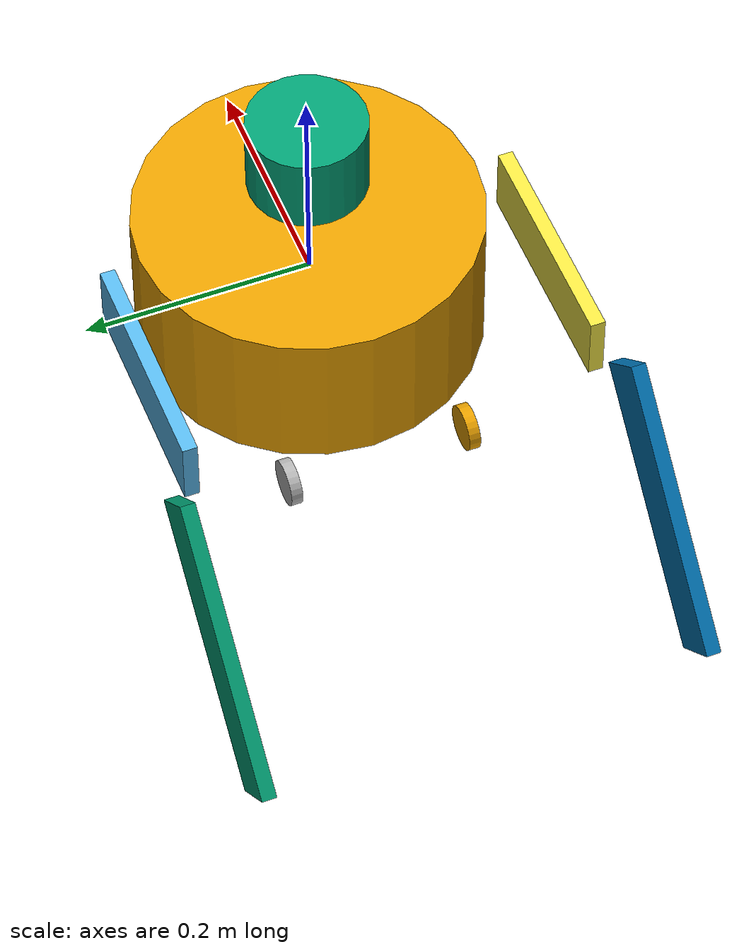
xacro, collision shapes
<?xml version="1.0"?>
<robot xmlns:xacro="http://www.ros.org/wiki/xacro" name="bipedal">

    <xacro:arg name="use_simulation" default="true"/>
    <xacro:arg name="add_wheel" default="false"/>
    <xacro:arg name="gpu" default="false"/>
    <xacro:property name="gpu" value="$(arg gpu)"/>
    <xacro:arg name="organize_cloud" default="false"/>
    <xacro:property name="organize_cloud" value="$(arg organize_cloud)"/>

    <xacro:include filename="$(find bipedal_wheel_description)/urdf/chassis.urdf.xacro"/>
    <xacro:chassis use_simulation="$(arg use_simulation)" add_wheel="$(arg add_wheel)"/>
    <xacro:include filename="$(find bipedal_wheel_description)/urdf/imu.urdf.xacro"/>
    <xacro:IMU connected_to="base_link" imu_name="base_imu" xyz="0 0 0"
               rpy="0 0 0"/>
    <xacro:include filename="$(find velodyne_description)/urdf/VLP-16.urdf.xacro"/>
    <xacro:VLP-16 parent="base_link" name="velodyne" topic="/velodyne_points" organize_cloud="${organize_cloud}" hz="10"
                  samples="1875" min_range="0.1" gpu="${gpu}">
        <origin xyz="0 0 0.11" rpy="0 0 0"/>
    </xacro:VLP-16>

    <xacro:if value="$(arg use_simulation)">
        <gazebo>
            <plugin name="gazebo_ros_control" filename="libbipedal_hw_sim.so">
                <robotNamespace>/</robotNamespace>
                <robotSimType>bipedal_wheel_gazebo/BipedalHWSim</robotSimType>
            </plugin>
        </gazebo>

        <gazebo>
            <plugin name="p3d_base_controller" filename="libgazebo_ros_p3d.so">
                <alwaysOn>true</alwaysOn>
                <updateRate>500.0</updateRate>
                <bodyName>base_link</bodyName>
                <topicName>ground_truth/state</topicName>
                <gaussianNoise>0.0</gaussianNoise>
                <frameName>world</frameName>
                <xyzOffsets>0 0 0</xyzOffsets>
                <rpyOffsets>0 0 0</rpyOffsets>
            </plugin>
        </gazebo>
    </xacro:if>

</robot>

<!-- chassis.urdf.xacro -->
<robot xmlns:xacro="http://www.ros.org/wiki/xacro">

    <!-- https://upload.wikimedia.org/wikipedia/commons/5/52/Wheelbase_and_Track.png -->
    <xacro:property name="leg_x_offset" value="0.0"/>
    <xacro:property name="leg_y_offset" value="0.178"/>
    <xacro:property name="leg_z_offset" value="0.038"/>
    <xacro:property name="leg_pitch_offset" value="${pi/2}"/>
    <xacro:property name="second_leg_y_offset" value="0.018"/>
    <xacro:property name="wheel_radius" value="0.055"/>
    <xacro:property name="wheel_y_offset" value="0.05"/>
    <xacro:property name="wheel_z_offset" value="-0.26"/>
    <xacro:property name="wheel_joint_effort" value="5"/>
    <xacro:property name="wheel_joint_velocity" value="50"/>

    <xacro:include filename="$(find bipedal_wheel_description)/urdf/leg.urdf.xacro"/>
    <xacro:include filename="$(find bipedal_wheel_description)/urdf/leg.transmission.xacro"/>

    <xacro:macro name="guide_wheel" params="connected_to prefix x_offset y_offset z_offset">
        <link name="${prefix}_guide_wheel">
            <visual>
                <origin xyz="0 0 0" rpy="${pi/2} 0 0"/>
                <geometry>
                    <cylinder length="0.01" radius="0.02"/>
                </geometry>
            </visual>
            <collision>
                <origin xyz="0 0 0" rpy="${pi/2}  0 0"/>
                <geometry>
                    <cylinder length="0.01" radius="0.02"/>
                </geometry>
            </collision>
            <inertial>
                <mass value="0.05"/>
                <origin xyz="0 0 0"/>
                <inertia ixx="5.417e-6" ixy="0.0" ixz="0.0" iyy="1.0e-5" iyz="0.0" izz="5.417e-6"/>
            </inertial>
        </link>
        <joint name="${prefix}_guide_wheel_joint" type="revolute">
            <parent link="${connected_to}"/>
            <child link="${prefix}_guide_wheel"/>
            <origin xyz="${x_offset} ${y_offset} ${z_offset}" rpy="0 0 0"/>
            <limit effort="0." velocity="99" lower="-1e16" upper="1e16"/>
            <dynamics damping="0.0" friction="0.05"/>
            <axis xyz="0 1 0"/>
        </joint>
    </xacro:macro>

    <xacro:macro name="wheel"
                 params="connected_to prefix wheel_x_offset wheel_y_offset wheel_z_offset  mechanical_reduction">
        <link name="${prefix}_wheel">
            <visual>
                <origin xyz="0 0 0" rpy="0 0 0"/>
                <geometry>
                    <mesh filename="package://bipedal_wheel_description/meshes/wheel.stl"/>
                </geometry>
            </visual>
            <collision>
                <origin xyz="0 0 0" rpy="${pi/2}  0 0"/>
                <geometry>
                    <cylinder length="0.03" radius="${wheel_radius}"/>
                </geometry>
            </collision>
            <inertial>
                <mass value="0.803567"/>
                <origin xyz="0 0 0"/>
                <inertia ixx="1.752e-3" ixy="-2.766e-6" ixz="-1.599e-6" iyy="3.357e-3"
                         iyz="2.581e-6" izz="1.752e-3"/>
            </inertial>
        </link>
        <joint name="${prefix}_wheel_joint" type="revolute">
            <axis xyz="0 1 0"/>
            <origin xyz="${wheel_x_offset} ${wheel_y_offset} ${wheel_z_offset}" rpy="0 0 0"/>
            <parent link="${connected_to}"/>
            <child link="${prefix}_wheel"/>
            <dynamics damping="0.0" friction="0.08"/>
            <limit effort="${wheel_joint_effort}" velocity="${wheel_joint_velocity}" lower="-1e16" upper="1e16"/>
        </joint>
        <transmission name="${prefix}_wheel_joint_trans">
            <type>transmission_interface/SimpleTransmission</type>
            <actuator name="${prefix}_wheel_joint_motor">
                <mechanicalReduction>${mechanical_reduction}</mechanicalReduction>
            </actuator>
            <joint name="${prefix}_wheel_joint">
                <hardwareInterface>hardware_interface/EffortJointInterface</hardwareInterface>
            </joint>
        </transmission>
    </xacro:macro>

    <xacro:macro name="chassis" params="use_simulation add_wheel">
        <link name="base_link">
            <inertial>
                <mass value="11.70"/>
                <origin xyz="0 0 0"/>
                <inertia ixx="0.085" ixy="0.0" ixz="0.0" iyy="0.085" iyz="0.0" izz="0.132"/>
            </inertial>
            <visual>
                <origin xyz="0 0 0" rpy="0 0 0"/>
                <geometry>
                    <cylinder length="0.14" radius="0.15"/>
                </geometry>
            </visual>
            <collision>
                <origin xyz="0 0.0 0" rpy="0 0 0"/>
                <geometry>
                    <cylinder length="0.14" radius="0.15"/>
                </geometry>
            </collision>
        </link>

        <xacro:leg prefix="left" connected_to="base_link" pitch_offset="${leg_pitch_offset}"
                   leg_x_offset="${leg_x_offset}"
                   leg_y_offset="${leg_y_offset}"
                   leg_z_offset="${leg_z_offset}"
                   second_leg_y_offset="${second_leg_y_offset}"/>
        <xacro:leg prefix="right" connected_to="base_link" pitch_offset="${leg_pitch_offset}"
                   leg_x_offset="${leg_x_offset}"
                   leg_y_offset="-${leg_y_offset}"
                   leg_z_offset="${leg_z_offset}"
                   second_leg_y_offset="-${second_leg_y_offset}"/>

        <xacro:leg_transmission prefix="left" mechanical_reduction="-1"/>
        <xacro:leg_transmission prefix="right" mechanical_reduction="1"/>

        <xacro:if value="${add_wheel}">
            <xacro:wheel connected_to="left_calf" prefix="left" wheel_x_offset="0"
                         wheel_y_offset="${wheel_y_offset}"
                         wheel_z_offset="${wheel_z_offset}" mechanical_reduction="-19.2032"/>
            <xacro:wheel connected_to="right_calf" prefix="right" wheel_x_offset="0"
                         wheel_y_offset="${-wheel_y_offset}"
                         wheel_z_offset="${wheel_z_offset}" mechanical_reduction="19.2032"/>
        </xacro:if>

        <xacro:guide_wheel connected_to="base_link" prefix="left_front" x_offset="0.16" y_offset="0.08"
                           z_offset="-0.07"/>
        <xacro:guide_wheel connected_to="base_link" prefix="right_front" x_offset="0.16" y_offset="-0.08"
                           z_offset="-0.07"/>
        <xacro:guide_wheel connected_to="base_link" prefix="left_back" x_offset="-0.16" y_offset="0.08"
                           z_offset="-0.07"/>
        <xacro:guide_wheel connected_to="base_link" prefix="right_back" x_offset="-0.16" y_offset="-0.08"
                           z_offset="-0.07"/>

    </xacro:macro>

</robot>

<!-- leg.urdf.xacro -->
<robot xmlns:xacro="http://www.ros.org/wiki/xacro">

    <xacro:property name="max_effort" value="40"/>
    <xacro:property name="max_velocity" value="10.46"/>
    <xacro:property name="calf_upper_limit" value="0."/>
    <xacro:property name="calf_lower_limit" value="-1.85"/>

    <xacro:macro name="leg"
                 params="prefix connected_to pitch_offset leg_x_offset leg_y_offset leg_z_offset second_leg_y_offset">
        <link name="${prefix}_thigh">
            <visual>
                <origin xyz="0 -0.005 0" rpy="0 0 0"/>
                <geometry>
                    <mesh filename="package://bipedal_wheel_description/meshes/first_leg.stl"/>
                </geometry>
            </visual>
            <collision>
                <origin xyz="0 0 -0.1"/>
                <geometry>
                    <box size="0.06 0.013 0.2"/>
                </geometry>
            </collision>
            <inertial>
                <mass value="0.164"/>
                <origin xyz="0 0 -0.109"/>
                <inertia ixx="6.51e-4" ixy="0.0" ixz="0.0" iyy="6.56e-4" iyz="0.0" izz="5.47e-5"/>
            </inertial>
        </link>
        <joint name="${prefix}_hip_joint" type="revolute">
            <axis xyz="0 1 0"/>
            <origin xyz="${leg_x_offset} ${leg_y_offset} ${leg_z_offset}" rpy="0 ${pitch_offset} 0"/>
            <parent link="${connected_to}"/>
            <child link="${prefix}_thigh"/>
            <limit effort="${max_effort}" velocity="${max_velocity}" lower="-1e10" upper="1e10"/>
        </joint>

        <link name="${prefix}_calf">
            <visual>
                <origin xyz="0 -0.005 0" rpy="0 0 0"/>
                <geometry>
                    <mesh filename="package://bipedal_wheel_description/meshes/second_leg.stl"/>
                </geometry>
            </visual>
            <collision>
                <origin xyz="0 0 -0.13" rpy="0 0 0"/>
                <geometry>
                    <box size="0.06 0.013 0.25"/>
                </geometry>
            </collision>
            <inertial>
                <mass value="0.190142"/>
                <origin xyz="0.0000 0.00 -0.12"/>
                <inertia ixx="1.976e-3" ixy="-5.117e-9" ixz="3.239e-6" iyy="2.024e-3" iyz="2.338e-6"
                         izz="5.2689e-5"/>
            </inertial>
        </link>
        <joint name="${prefix}_knee_joint" type="revolute">
            <axis xyz="0 1 0"/>
            <origin xyz="0 ${second_leg_y_offset} -0.218" rpy="0 -${pi/4} 0"/>
            <parent link="${prefix}_thigh"/>
            <child link="${prefix}_calf"/>
            <limit effort="${max_effort}" velocity="${max_velocity}" lower="${calf_lower_limit}"
                   upper="${calf_upper_limit}"/>
        </joint>

    </xacro:macro>

</robot>

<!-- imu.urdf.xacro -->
<robot xmlns:xacro="http://www.ros.org/wiki/xacro" name="imu">
    <xacro:macro name="IMU" params="connected_to imu_name xyz:='0 0 0' rpy:='0 0 0' ">
        <!-- Imu is fixed to the base link -->
        <joint name="${imu_name}_joint" type="fixed">
            <origin xyz="${xyz}" rpy="${rpy}"/>
            <parent link="${connected_to}"/>
            <child link="${imu_name}"/>
        </joint>
        <!-- Imu link -->
        <link name="${imu_name}">
            <inertial>
                <mass value="0.01"/>
                <origin rpy="0 0 0" xyz="0 0 0"/>
                <inertia ixx="0.000001" ixy="0" ixz="0" iyy="0.000001" iyz="0" izz="0.000001"/>
            </inertial>
            <visual>
                <origin rpy="0 0 0" xyz="0 0 0"/>
                <geometry>
                    <mesh filename="package://bipedal_wheel_description/meshes/imu.stl" scale="1 1 1"/>
                </geometry>
            </visual>
            <material name="orange">
                <color rgba="255 108 10 255"/>
            </material>
        </link>
        <gazebo reference="${imu_name}">
            <material>Gazebo/Orange</material>
        </gazebo>
        <gazebo reference="${imu_name}_joint">
            <disableFixedJointLumping>true</disableFixedJointLumping>
        </gazebo>
    </xacro:macro>
</robot>

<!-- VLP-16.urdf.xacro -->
<robot xmlns:xacro="http://www.ros.org/wiki/xacro" name="VLP-16">
    <xacro:property name="M_PI" value="3.1415926535897931"/>
    <xacro:macro name="VLP-16"
                 params="*origin parent:=base_link name:=velodyne topic:=/velodyne_points organize_cloud:=false hz:=10 lasers:=16 samples:=1875 collision_range:=0.3 min_range:=0.9 max_range:=130.0 noise:=0.008 min_angle:=-${M_PI} max_angle:=${M_PI} gpu:=false">

        <joint name="${name}_base_mount_joint" type="fixed">
            <xacro:insert_block name="origin"/>
            <parent link="${parent}"/>
            <child link="${name}_base_link"/>
        </joint>

        <link name="${name}_base_link">
            <inertial>
                <mass value="0.83"/>
                <origin xyz="0 0 0.03585"/>
                <inertia ixx="${(0.83 * (3.0*0.0516*0.0516 + 0.0717*0.0717)) / 12.0}" ixy="0" ixz="0"
                         iyy="${(0.83 * (3.0*0.0516*0.0516 + 0.0717*0.0717)) / 12.0}" iyz="0"
                         izz="${0.5 * 0.83 * (0.0516*0.0516)}"/>
            </inertial>
            <visual>
                <geometry>
                    <mesh filename="package://velodyne_description/meshes/VLP16_base_1.dae"/>
                </geometry>
            </visual>
            <visual>
                <geometry>
                    <mesh filename="package://velodyne_description/meshes/VLP16_base_2.dae"/>
                </geometry>
            </visual>
            <collision>
                <origin rpy="0 0 0" xyz="0 0 0.03585"/>
                <geometry>
                    <cylinder radius="0.0516" length="0.0717"/>
                </geometry>
            </collision>
        </link>

        <joint name="${name}_base_scan_joint" type="fixed">
            <origin xyz="0 0 0.0377" rpy="0 0 0"/>
            <parent link="${name}_base_link"/>
            <child link="${name}"/>
        </joint>

        <link name="${name}">
            <inertial>
                <mass value="0.01"/>
                <origin xyz="0 0 0"/>
                <inertia ixx="1e-7" ixy="0" ixz="0" iyy="1e-7" iyz="0" izz="1e-7"/>
            </inertial>
            <visual>
                <origin xyz="0 0 -0.0377"/>
                <geometry>
                    <mesh filename="package://velodyne_description/meshes/VLP16_scan.dae"/>
                </geometry>
            </visual>
            <collision>
                <geometry>
                    <sphere radius="0"/>
                </geometry>
            </collision>
        </link>

        <!-- Gazebo requires the velodyne_gazebo_plugins package -->
        <gazebo reference="${name}">
            <xacro:if value="${gpu}">
                <sensor type="gpu_ray" name="${name}-VLP16">
                    <pose>0 0 0 0 0 0</pose>
                    <visualize>false</visualize>
                    <update_rate>${hz}</update_rate>
                    <ray>
                        <scan>
                            <horizontal>
                                <samples>${samples}</samples>
                                <resolution>1</resolution>
                                <min_angle>${min_angle}</min_angle>
                                <max_angle>${max_angle}</max_angle>
                            </horizontal>
                            <vertical>
                                <samples>${lasers}</samples>
                                <resolution>1</resolution>
                                <min_angle>-${15.0*M_PI/180.0}</min_angle>
                                <max_angle>${15.0*M_PI/180.0}</max_angle>
                            </vertical>
                        </scan>
                        <range>
                            <min>${collision_range}</min>
                            <max>${max_range+1}</max>
                            <resolution>0.001</resolution>
                        </range>
                        <noise>
                            <type>gaussian</type>
                            <mean>0.0</mean>
                            <stddev>0.0</stddev>
                        </noise>
                    </ray>
                    <plugin name="gazebo_ros_laser_controller" filename="libgazebo_ros_velodyne_gpu_laser.so">
                        <topicName>${topic}</topicName>
                        <frameName>${name}</frameName>
                        <organize_cloud>${organize_cloud}</organize_cloud>
                        <min_range>${min_range}</min_range>
                        <max_range>${max_range}</max_range>
                        <gaussianNoise>${noise}</gaussianNoise>
                    </plugin>
                </sensor>
            </xacro:if>
            <xacro:unless value="${gpu}">
                <sensor type="ray" name="${name}-VLP16">
                    <pose>0 0 0 0 0 0</pose>
                    <visualize>false</visualize>
                    <update_rate>${hz}</update_rate>
                    <ray>
                        <scan>
                            <horizontal>
                                <samples>${samples}</samples>
                                <resolution>1</resolution>
                                <min_angle>${min_angle}</min_angle>
                                <max_angle>${max_angle}</max_angle>
                            </horizontal>
                            <vertical>
                                <samples>${lasers}</samples>
                                <resolution>1</resolution>
                                <min_angle>0</min_angle>
                                <max_angle>${15.0*M_PI/180.0}</max_angle>
                            </vertical>
                        </scan>
                        <range>
                            <min>${collision_range}</min>
                            <max>${max_range+1}</max>
                            <resolution>0.001</resolution>
                        </range>
                        <noise>
                            <type>gaussian</type>
                            <mean>0.0</mean>
                            <stddev>0.0</stddev>
                        </noise>
                    </ray>
                    <plugin name="gazebo_ros_laser_controller" filename="libgazebo_ros_velodyne_laser.so">
                        <topicName>${topic}</topicName>
                        <frameName>${name}</frameName>
                        <organize_cloud>${organize_cloud}</organize_cloud>
                        <min_range>${min_range}</min_range>
                        <max_range>${max_range}</max_range>
                        <gaussianNoise>${noise}</gaussianNoise>
                    </plugin>
                </sensor>
            </xacro:unless>
        </gazebo>

    </xacro:macro>
</robot>
